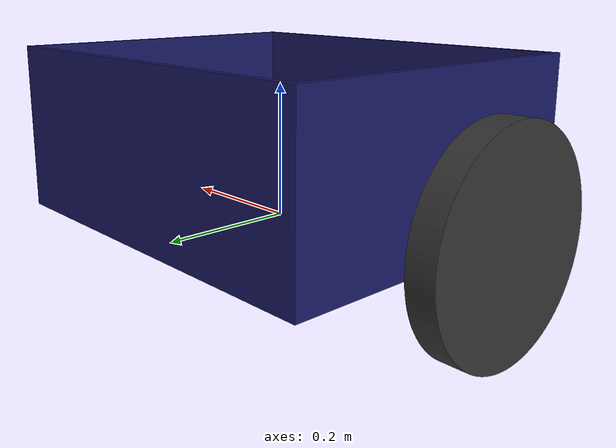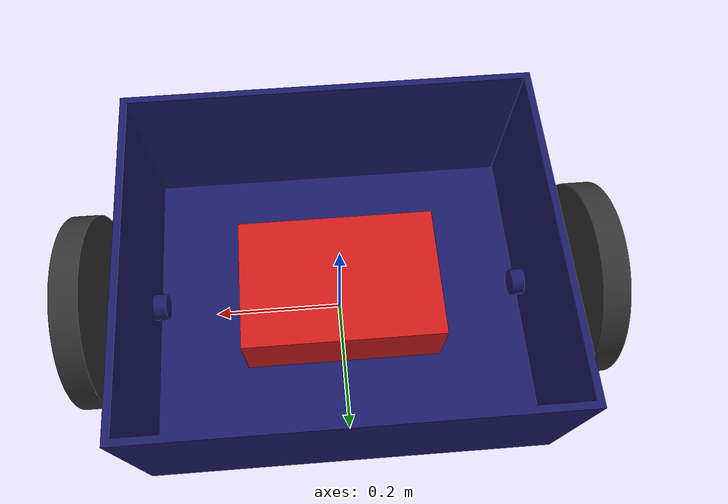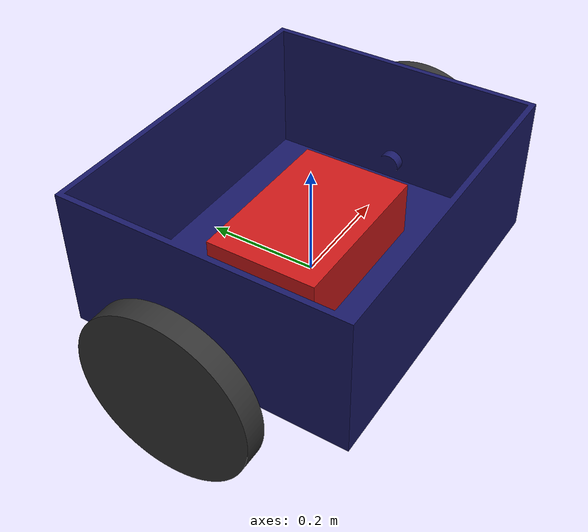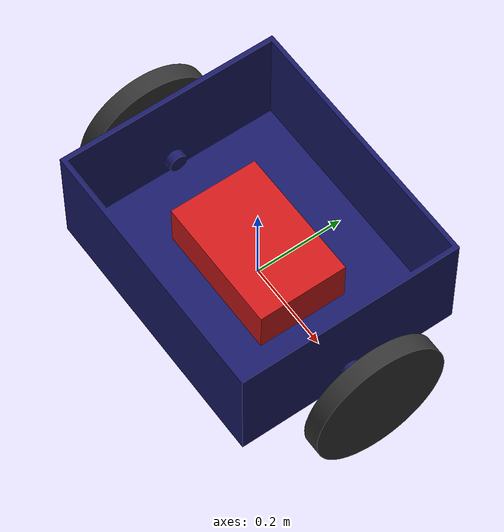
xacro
<?xml version="1.0" ?>
<robot name="self_balancing_bot_fusion" xmlns:xacro="http://www.ros.org/wiki/xacro">

<xacro:include filename="$(find ros2_twsbr2)/urdf/materials.xacro" />
<xacro:include filename="$(find ros2_twsbr2)/urdf/self_balancing_bot_fusion.trans" />
<xacro:include filename="$(find ros2_twsbr2)/urdf/self_balancing_bot_fusion.gazebo" />

<link name="base_footprint"/>

  <joint name="base_footprint_to_base_link" type="fixed">
    <parent link="base_footprint"/>
    <child link="base_link"/>
    <origin xyz="0 0 0" rpy="0 0 0"/>
  </joint>

 <link name="base_link">
  <inertial>
    <origin xyz="2.08254851546395e-16 3.470914192439917e-17 0.08335932427700989" rpy="0 0 0"/>
    <mass value="22.639667210540313"/>
    <inertia ixx="0.903157" iyy="1.220897" izz="1.827865" ixy="0.0" iyz="0.0" ixz="0.0"/>
  </inertial>
 <visual>
    <origin xyz="0 0 0" rpy="0 0 0"/>
    <geometry>
      <mesh filename="package://ros2_twsbr2/meshes/base_link.stl" scale="0.001 0.001 0.001"/>
    </geometry>
    <material name="midnight_blue"/>
  </visual> 
   <collision>
    <origin xyz="0 0 0" rpy="0 0 0"/>
    <geometry>
      <mesh filename="package://ros2_twsbr2/meshes/base_link.stl" scale="0.001 0.001 0.001"/>
    </geometry>
  </collision>
</link> 

<link name="right_wheel_1">
  <inertial>
    <origin xyz="0.0199 -3.019e-16 -2.706e-16" rpy="0 0 0"/>
    <mass value="3.3929"/>
    <inertia ixx="0.03817" iyy="0.019538" izz="0.019538" ixy="0.0" iyz="0.0" ixz="0.0"/>
  </inertial>

   <visual>
    <origin xyz="-0.36 -0.0 -0.05" rpy="0 0 0"/>
    <geometry>
      <mesh filename="package://ros2_twsbr2/meshes/right_wheel_1.stl" scale="0.001 0.001 0.001"/>
    </geometry>
    <material name="charcoal_grey"/>
  </visual>

  <collision>
    <origin xyz="0 0 0" rpy="0 1.5707 0"/>
    <geometry>
      <cylinder length="0.05" radius="0.15"/>
    </geometry>
  </collision>
</link>

<link name="left_wheel_1">
  <inertial>
    <origin xyz="0.0199 -3.019e-16 -2.706e-16" rpy="0 0 0"/>
    <mass value="3.3929"/>
    <inertia ixx="0.03817" iyy="0.019538" izz="0.019538" ixy="0.0" iyz="0.0" ixz="0.0"/>
  </inertial>

  <visual>
    <origin xyz="0.36 -0.0 -0.05" rpy="0 0 0"/>
    <geometry>
      <mesh filename="package://ros2_twsbr2/meshes/left_wheel_1.stl" scale="0.001 0.001 0.001"/>
    </geometry>
    <material name="charcoal_grey"/>
  </visual>

  <collision>
    <origin xyz="0 0 0" rpy="0 1.5707 0"/>
    <geometry>
      <cylinder length="0.05" radius="0.15"/>
    </geometry>
  </collision>
</link>

<link name="imu_link_1">
  <inertial>
    <origin xyz="1.2320156670904636e-17 -1.3527036577340034e-32 0.004999999999999987" rpy="0 0 0"/>
    <mass value="0.026322709845483096"/>
    <inertia ixx="6e-06" iyy="6e-06" izz="1.1e-05" ixy="0.0" iyz="0.0" ixz="0.0"/>
  </inertial>
  <visual>
    <origin xyz="-0.0 -0.0 -0.01" rpy="0 0 0"/>
    <geometry>
      <mesh filename="package://ros2_twsbr2/meshes/imu_link_1.stl" scale="0.001 0.001 0.001"/>
    </geometry>
    <material name="silver"/>
  </visual>
   <collision>
    <origin xyz="-0.0 -0.0 -0.01" rpy="0 0 0"/>
    <geometry>
      <mesh filename="package://ros2_twsbr2/meshes/imu_link_1.stl" scale="0.001 0.001 0.001"/>
    </geometry>
  </collision>
</link>

<joint name="Revolute 1" type="continuous">
  <origin xyz="0.36 0.0 0.05" rpy="0 0 0"/>
  <parent link="base_link"/>
  <child link="right_wheel_1"/>
  <axis xyz="1.0 0.0 0.0"/>
</joint>

<joint name="Revolute 2" type="continuous">
  <origin xyz="-0.36 0.0 0.05" rpy="0 0 0"/>
  <parent link="base_link"/>
  <child link="left_wheel_1"/>
  <axis xyz="1.0 0.0 0.0"/>
</joint>

<joint name="Rigid 3" type="fixed">
  <origin xyz="0.0 0.0 0.01" rpy="0 0 0"/>
  <parent link="base_link"/>
  <child link="imu_link_1"/>
</joint>

<link name="load_block_link">
    <inertial>
      <mass value="5"/>
      <inertia ixx="0.0002" ixy="0.0" ixz="0.0" iyy="0.0002" iyz="0.0" izz="0.0002"/>
    </inertial>

    <visual>
      <geometry>
        <box size="0.3 0.2 0.1"/>
      </geometry>
      <material name="warning_red"/>
    </visual>

    <collision>
      <geometry>
        <box size="0.05 0.05 0.05"/>
      </geometry>
    </collision>
  </link>

  <joint name="load_block_joint" type="fixed">
    <origin xyz="0 0 0.07" rpy="0 0 0"/>
    <parent link="base_link"/>
    <child link="load_block_link"/>
  </joint>

</robot>

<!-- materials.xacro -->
<robot name="self_balancing_bot_fusion" xmlns:xacro="http://www.ros.org/wiki/xacro" >

  <material name="silver">
    <color rgba="0.700 0.700 0.700 1.000"/>
  </material>

  <material name="midnight_blue">
    <color rgba="0.1 0.1 0.4 1.0"/>
  </material>

  <material name="charcoal_grey">
    <color rgba="0.2 0.2 0.2 1.0"/>
  </material>

  <material name="warning_red">
    <color rgba="0.8 0.1 0.1 1.0"/>
  </material>

</robot>

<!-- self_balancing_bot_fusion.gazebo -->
<robot name="self_balancing_bot_fusion" xmlns:xacro="http://www.ros.org/wiki/xacro" >

<xacro:property name="body_color" value="Gazebo/Silver" />

<gazebo>
<plugin filename="libignition-gazebo-diff-drive-system.so" name="ignition::gazebo::systems::DiffDrive">
    <left_joint>Revolute 2</left_joint>
    <right_joint>Revolute 1</right_joint>
    <wheel_separation>0.72</wheel_separation>
    <wheel_radius>0.15</wheel_radius>
    <odom_publish_frequency>20</odom_publish_frequency>
    <topic>cmd_vel</topic>

    <odom_topic>odom</odom_topic>
    <frame_id>odom</frame_id>
    <child_frame_id>base_footprint</child_frame_id>
  </plugin>

  <plugin filename="libignition-gazebo-imu-system.so" name="ignition::gazebo::systems::Imu">
  </plugin>
</gazebo>

<gazebo reference="base_link">
  <material>${body_color}</material>
  <mu1>0.2</mu1>
  <mu2>0.2</mu2>
  <selfCollide>true</selfCollide>
  <gravity>true</gravity>
</gazebo>

<gazebo reference="right_wheel_1">
  <material>${body_color}</material>
  <mu1>1.5</mu1>
  <mu2>1.5</mu2>
  <selfCollide>true</selfCollide>
</gazebo>

<gazebo reference="left_wheel_1">
  <material>${body_color}</material>
  <mu1>1.5</mu1>
  <mu2>1.5</mu2>
  <selfCollide>true</selfCollide>
</gazebo>

<gazebo reference="imu_link_1">
  <sensor name="imu_sensor" type="imu">
    <always_on>1</always_on>
    <update_rate>100</update_rate>
    <visualize>true</visualize>
    <topic>imu</topic>
    <ignition_frame_id>imu_link_1</ignition_frame_id>
  </sensor>
  <material>${body_color}</material>
</gazebo>
</robot>
